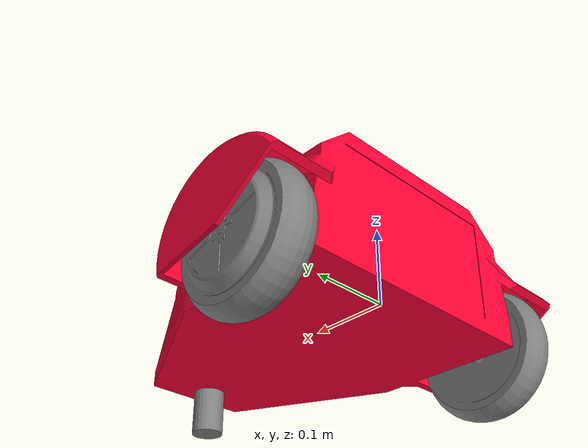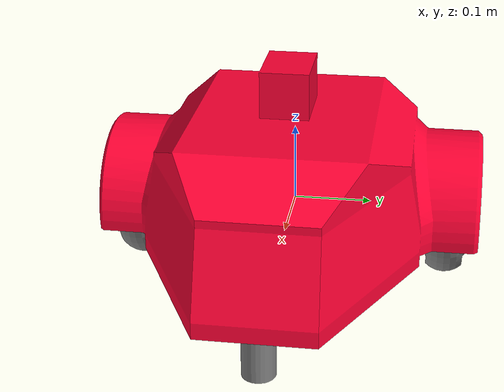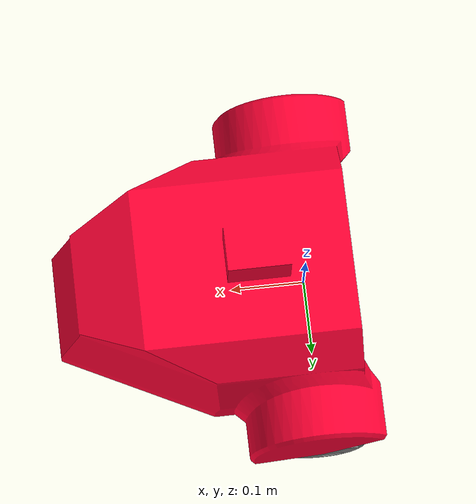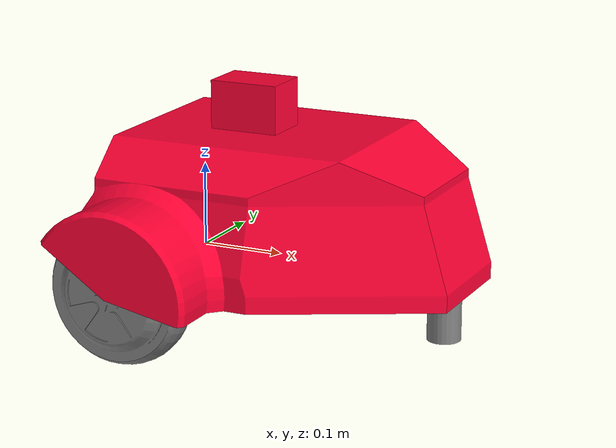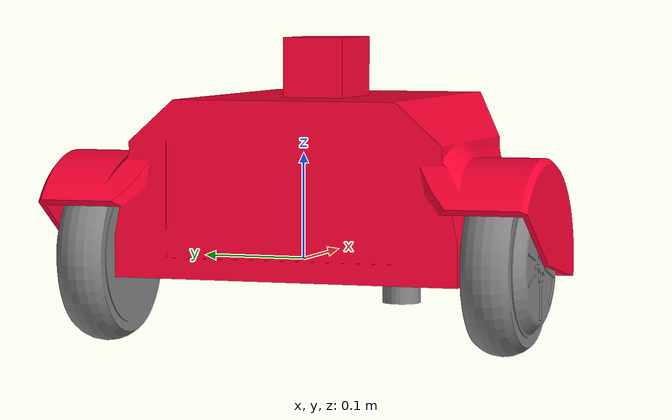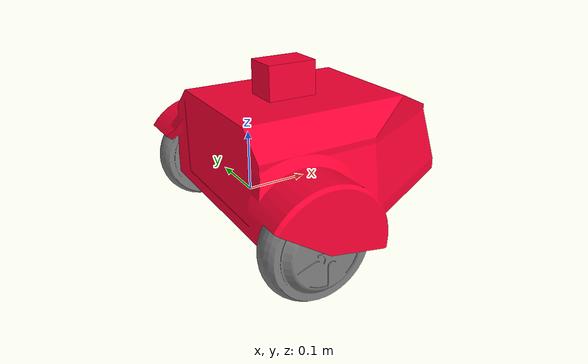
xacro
<?xml version="1.0"?>
<robot xmlns:xacro="http://www.ros.org/wiki/xacro">

    <xacro:include filename="materials.xacro"/>
    <xacro:include filename="inertial_macros.xacro"/>

    <link name="base_link">
        <origin xyz="0 0 0.01"/>
    </link>

    <joint name="chassis_joint" type="fixed">
        <parent link="base_link"/>
        <child link="chassis"/>
        <origin xyz="0 0 0.0023" rpy="0 0 ${pi}"/>
    </joint>

    <link name="chassis">
        <visual>
            <origin xyz="0 0 0"/>
            <geometry>
                <mesh filename="package://pg1_project/description/meshes/BODY.stl" scale="0.001 0.001 0.001"/>
            </geometry>
            <material name="red"/>
        </visual>
        <collision>
            <origin xyz="-0.13 0 0.1"/>
            <geometry>
                <box size="0.4 0.5 0.3"/>
            </geometry>
        </collision>
        <xacro:inertial_box mass="4" x="0.4" y="0.3" z="0.2">
            <origin xyz="0.15 0 0.075" rpy="0 0 0"/>
        </xacro:inertial_box>
    </link>

    <joint name="left_wheel_joint" type="continuous">
        <parent link="base_link"/>
        <child link="left_wheel"/>
        <origin xyz="0 0.2 0" rpy="-${pi/2} 0 0"/>
        <axis xyz="0 0 1"/>
    </joint>

    <link name="left_wheel">
        <visual>
            <geometry>
                <mesh filename="package://pg1_project/description/meshes/WHEEL.stl" scale="0.001 0.001 0.001"/>
            </geometry>
            <material name="gray"/>
        </visual>
        <collision>
            <geometry>
                <mesh filename="package://pg1_project/description/meshes/WHEEL.stl" scale="0.001 0.001 0.001"/>
            </geometry>
        </collision>
        <xacro:inertial_cylinder mass="3" radius="0.16" length="0.04">
            <origin xyz="0 0 0" rpy="0 0 0"/>
        </xacro:inertial_cylinder>
    </link>

    <joint name="right_wheel_joint" type="continuous">
        <parent link="base_link"/>
        <child link="right_wheel"/>
        <origin xyz="0 -0.2 0" rpy="${pi/2} 0 0"/>
        <axis xyz="0 0 -1"/>
    </joint>

    <link name="right_wheel">
        <visual>
            <geometry>
                <mesh filename="package://pg1_project/description/meshes/WHEEL.stl" scale="0.001 0.001 0.001"/>
            </geometry>
            <material name="gray"/>
        </visual>
        <collision>
            <geometry>
                <mesh filename="package://pg1_project/description/meshes/WHEEL.stl" scale="0.001 0.001 0.001"/>
            </geometry>
        </collision>
        <xacro:inertial_cylinder mass="3" radius="0.16" length="0.04">
            <origin xyz="0 0 0" rpy="0 0 0"/>
        </xacro:inertial_cylinder>
    </link>

    <joint name="caster_wheel_joint" type="fixed">
        <parent link="base_link"/>
        <child link="caster_wheel"/>
        <origin xyz="0.31 0 -0.04" />
    </joint>

    <link name="caster_wheel">
        <visual>
            <geometry>
                <cylinder radius="0.02" length="0.07"/>
            </geometry>
            <material name="gray"/>
        </visual>
        <collision>
            <geometry>
                <cylinder radius="0.04" length="0.05"/>
            </geometry>
        </collision>
        <xacro:inertial_sphere mass="0.1" radius="0.05">
            <origin xyz="0 0 0" rpy="0 0 0"/>
        </xacro:inertial_sphere>
    </link>

</robot>

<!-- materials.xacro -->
<robot xmlns:xacro="http://www.ros.org/wiki/xacro">

<material name="white">
    <color rgba="1 1 1 1"/>
</material>

<material name="red">
    <color rgba="1 0 0.2 1"/>
</material>

<material name="blue">
    <color rgba="0.2 0.2 1 1"/>
</material>

<material name="black">
    <color rgba="0 0 0 1"/>
</material>

<material name="gray">
    <color rgba="0.5 0.5 0.5 1"/>
</material>

</robot>

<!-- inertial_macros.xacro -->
<robot xmlns:xacro="http://www.ros.org/wiki/xacro" >

    <!-- Specify some standard inertial calculations https://en.wikipedia.org/wiki/List_of_moments_of_inertia -->
    <!-- These make use of xacro's mathematical functionality -->

    <xacro:macro name="inertial_sphere" params="mass radius *origin">
        <inertial>
            <xacro:insert_block name="origin"/>
            <mass value="${mass}"/>
            <inertia ixx="${(2/5) * mass * (radius*radius)}" ixy="0.0" ixz="0.0"
                    iyy="${(2/5) * mass * (radius*radius)}" iyz="0.0"
                    izz="${(2/5) * mass * (radius*radius)}"/>
        </inertial>
    </xacro:macro>

    <xacro:macro name="inertial_box" params="mass x y z *origin">
        <inertial>
            <xacro:insert_block name="origin"/>
            <mass value="${mass}"/>
            <inertia ixx="${(1/12) * mass * (y*y+z*z)}" ixy="0.0" ixz="0.0"
                    iyy="${(1/12) * mass * (x*x+z*z)}" iyz="0.0"
                    izz="${(1/12) * mass * (x*x+y*y)}"/>
        </inertial>
    </xacro:macro>

    <xacro:macro name="inertial_cylinder" params="mass length radius *origin">
        <inertial>
            <xacro:insert_block name="origin"/>
            <mass value="${mass}"/>
            <inertia ixx="${(1/12) * mass * (3*radius*radius + length*length)}" ixy="0.0" ixz="0.0"
                    iyy="${(1/12) * mass * (3*radius*radius + length*length)}" iyz="0.0"
                    izz="${(1/2) * mass * (radius*radius)}"/>
        </inertial>
    </xacro:macro>

</robot>
